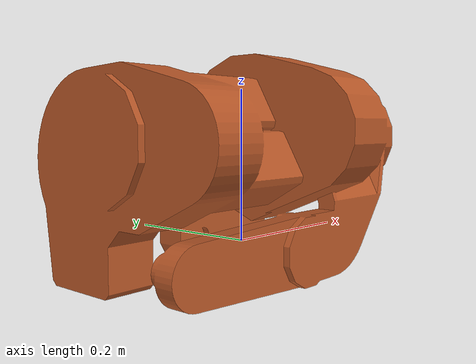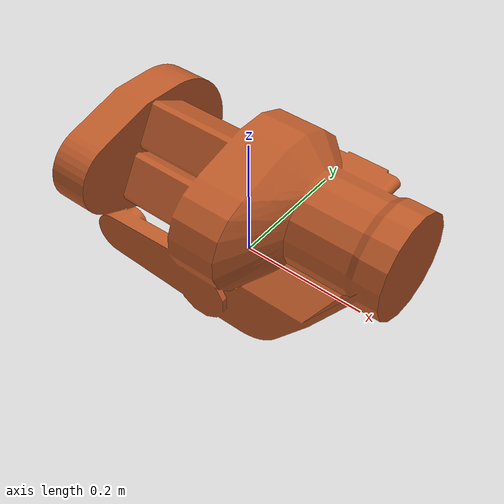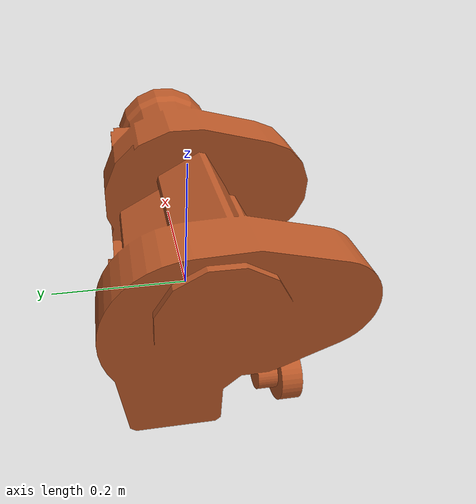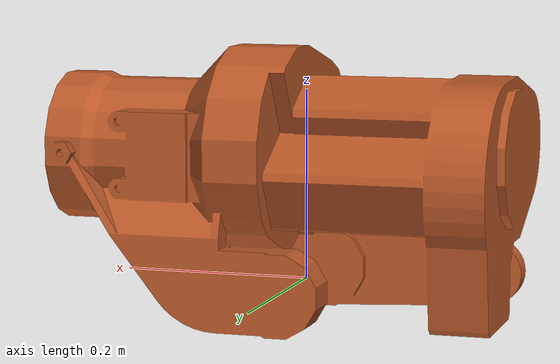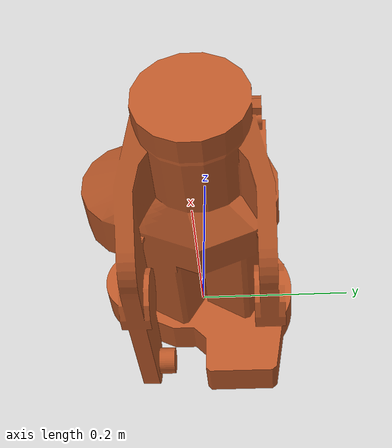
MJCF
<mujoco model="link_3">
  <default>
    <default class="visual">
      <geom group="2" type="mesh" contype="0" conaffinity="0"/>
    </default>
    <default class="collision">
      <geom group="3" type="mesh"/>
    </default>
  </default>
  <asset>
    <material name="colour_abb_orange.001" specular="0.5" shininess="0.25" rgba="0.737255 0.349020 0.160784 1.000000"/>
    <mesh file="link_3.obj"/>
  </asset>
  <worldbody>
    <body name="link_3">
      <geom material="colour_abb_orange.001" mesh="link_3" class="visual"/>
      <geom mesh="link_3" class="collision"/>
    </body>
  </worldbody>
</mujoco>
